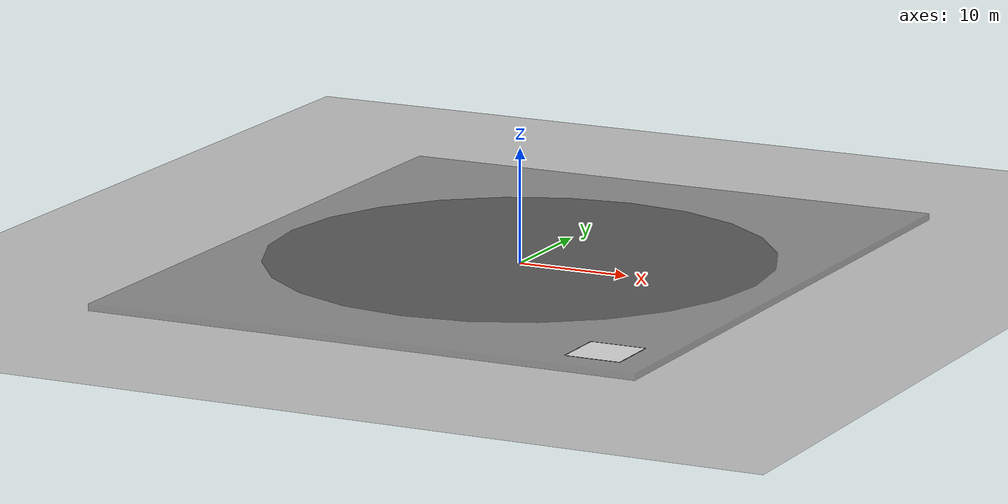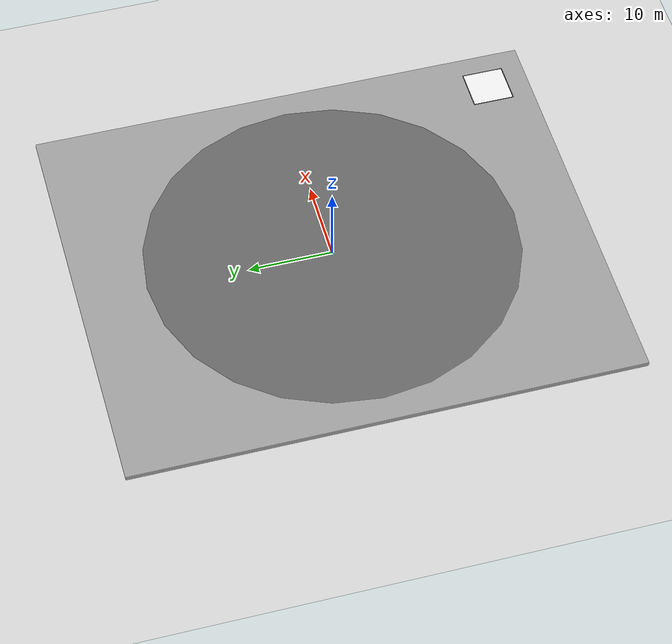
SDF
<sdf version="1.4">
 <world name="default">
  <include><uri>model://ground_plane</uri></include>
  <include><uri>model://sun</uri></include>
  <model name="arena">
   <static>true</static>
   <link name="link">
    <collision name="collision"><geometry><box><size>50.0 60.0 1.0</size></box></geometry></collision>
    <visual name="visual">
     <geometry><box><size>50.0 60.0 1.0</size></box></geometry>
     <material>
      <ambient>0.68 0.68 0.68 0.9</ambient>
      <diffuse>0.55 0.55 0.55 0.7</diffuse>
      <specular>0.50 0.50 0.50 0</specular>
      <emissive>0.35 0.35 0.35 0</emissive>
     </material>
    </visual>
   </link>
  </model>
  <model name="arena_central">
   <static>false</static>
   <pose>0 0 0.5005 0 0 0</pose>
   <link name="link">
    <inertial>
     <mass>100</mass>
     <inertia>
      <ixx>16133.3333</ixx>
      <ixy>0.0</ixy>
      <ixz>0.0</ixz>
      <iyy>16133.3333</iyy>
      <iyz>0.0</iyz>
      <izz>32266.6667</izz>
     </inertia>
    </inertial>
    <collision name="collision">
     <geometry><cylinder><radius>22.0</radius><length>.001</length></cylinder></geometry>
    </collision>
    <visual name="visual">
     <geometry><cylinder><radius>22.0</radius><length>.001</length></cylinder></geometry>
     <material>
      <ambient>0.30 0.30 0.30 1</ambient>
      <diffuse>0.25 0.25 0.25 0.7</diffuse>
      <specular>0.10 0.10 0.10 0</specular>
      <emissive>0.05 0.05 0.05 0</emissive>
     </material>
    </visual>
   </link>
  </model>
  <model name="arena_start">
   <static>true</static>
   <link name="link_1">
    <pose>20.0 -25.0 0.5005 0 0 0</pose>
    <collision name="collision"><geometry><box><size>5.0 5.0 0.001</size></box></geometry></collision>
    <visual name="visual_1">
     <geometry><box><size>5.0 5.0 0.001</size></box></geometry>
     <material><script><name>Gazebo/Black</name></script></material>
    </visual>
   </link>
   <link name="link_2">
    <pose>20.0 -25.0 0.5015 0 0 0</pose>
    <collision name="collision"><geometry><box><size>4.8 4.8 0.001</size></box></geometry></collision>
    <visual name="visual_2">
     <geometry><box><size>4.8 4.8 0.001</size></box></geometry>
     <material>
      <ambient>1 1 1 1</ambient>
      <diffuse>0.9 0.9 0.9 0.9</diffuse>
      <specular>0.85 0.85 0.85 0</specular>
      <emissive>0.8 0.8 0.8 0</emissive>
     </material>
    </visual>
   </link>
  </model>
  <plugin name="ros_interface_plugin" filename="librotors_gazebo_ros_interface_plugin.so"/>
  <spherical_coordinates>
   <surface_model>EARTH_WGS84</surface_model>
   <latitude_deg>47.3667</latitude_deg>
   <longitude_deg>8.5500</longitude_deg>
   <elevation>500.0</elevation>
   <heading_deg>0</heading_deg>
  </spherical_coordinates>
  <physics name="default_physics" default="0" type="bullet">
   <max_step_size>0.001</max_step_size>
   <real_time_factor>1</real_time_factor>
   <real_time_update_rate>1000</real_time_update_rate>
   <bullet><solver><iters>120</iters></solver></bullet>
  </physics>
 </world>
</sdf>
